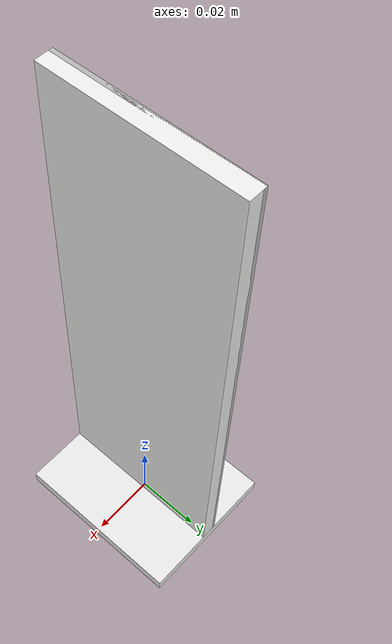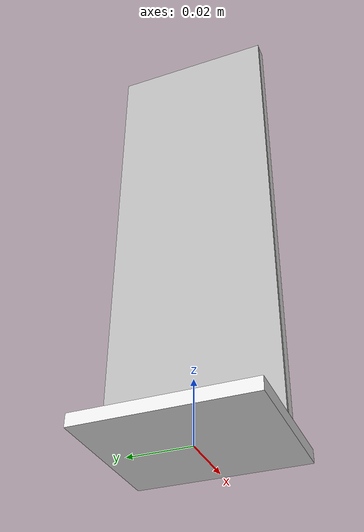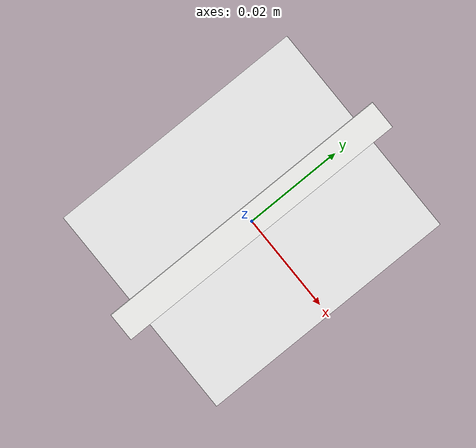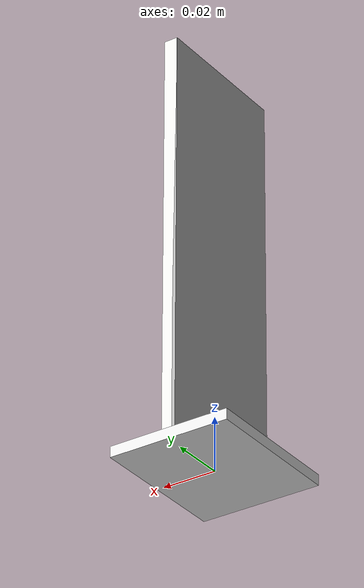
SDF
<?xml version="1.0"?>
<sdf version="1.7">
  <model name="standee_c15">
    <static>true</static>
    <link name="link">
      <visual name="board">
        <pose>0 0 0.0790 0 0 0</pose>
        <geometry><box><size>0.0050 0.0534 0.1500</size></box></geometry>
        <material><ambient>0.94 0.94 0.93 1</ambient><diffuse>0.94 0.94 0.93 1</diffuse></material>
      </visual>
      <visual name="art">
        <pose>-0.0020 0 0.0790 0 0 0</pose>
        <geometry><box><size>0.0012 0.0534 0.1500</size></box></geometry>
        <material>
          <script>
            <uri>model://standee_c15/materials/scripts</uri>
            <uri>model://standee_c15/materials/textures</uri>
            <name>Standee/c15</name>
          </script>
        </material>
      </visual>
      <visual name="base">
        <pose>0 0 0.0020 0 0 0</pose>
        <geometry><box><size>0.0450 0.0534 0.0040</size></box></geometry>
        <material><ambient>0.92 0.92 0.92 1</ambient><diffuse>0.92 0.92 0.92 1</diffuse></material>
      </visual>
      <collision name="col">
        <pose>0 0 0.0790 0 0 0</pose>
        <geometry><box><size>0.0050 0.0500 0.1500</size></box></geometry>
      </collision>
      <collision name="base_c">
        <pose>0 0 0.0020 0 0 0</pose>
        <geometry><box><size>0.0450 0.0534 0.0040</size></box></geometry>
      </collision>
    </link>
  </model>
</sdf>
